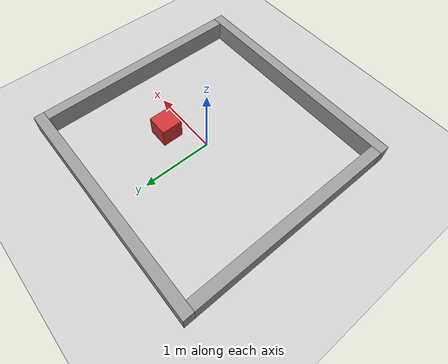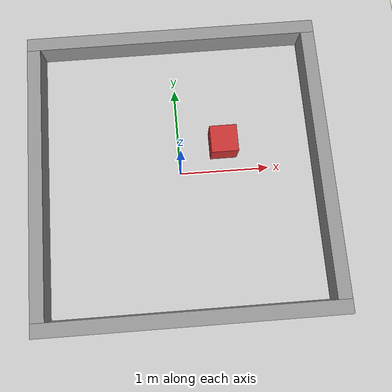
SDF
<?xml version="1.0" ?>
<sdf version="1.8">
  <world name="hexapod_world">
    <physics name="1ms" type="ignored">
      <max_step_size>0.001</max_step_size>
      <real_time_factor>1.0</real_time_factor>
    </physics>

    <!-- Required system plugins for Gazebo Harmonic -->
    <plugin filename="gz-sim-physics-system" name="gz::sim::systems::Physics"/>
    <plugin filename="gz-sim-user-commands-system" name="gz::sim::systems::UserCommands"/>
    <plugin filename="gz-sim-scene-broadcaster-system" name="gz::sim::systems::SceneBroadcaster"/>
    <plugin filename="gz-sim-contact-system" name="gz::sim::systems::Contact"/>
    <plugin filename="gz-sim-sensors-system" name="gz::sim::systems::Sensors">
      <render_engine>ogre2</render_engine>
    </plugin>

    <!-- Sunlight -->
    <light type="directional" name="sun">
      <cast_shadows>true</cast_shadows>
      <pose>0 0 10 0 0 0</pose>
      <diffuse>0.8 0.8 0.8 1</diffuse>
      <specular>0.2 0.2 0.2 1</specular>
      <attenuation>
        <range>1000</range>
        <constant>0.9</constant>
        <linear>0.01</linear>
        <quadratic>0.001</quadratic>
      </attenuation>
      <direction>-0.5 0.1 -0.9</direction>
    </light>

    <!-- Ground plane -->
    <model name="ground_plane">
      <static>true</static>
      <link name="link">
        <collision name="collision">
          <geometry>
            <plane>
              <normal>0 0 1</normal>
              <size>100 100</size>
            </plane>
          </geometry>
          <surface>
            <friction>
              <ode>
                <mu>1.0</mu>
                <mu2>1.0</mu2>
              </ode>
            </friction>
          </surface>
        </collision>
        <visual name="visual">
          <geometry>
            <plane>
              <normal>0 0 1</normal>
              <size>100 100</size>
            </plane>
          </geometry>
          <material>
            <ambient>0.8 0.8 0.8 1</ambient>
            <diffuse>0.8 0.8 0.8 1</diffuse>
            <specular>0.8 0.8 0.8 1</specular>
          </material>
        </visual>
      </link>
    </model>

    <!--
      Simple room: 3m x 3m, walls 0.15m thick, 0.30m tall.
      Origin at room centre (0, 0).  Robot spawns near (-1, 0).
    -->

    <!-- North wall (y = +1.5) -->
    <model name="wall_north">
      <static>true</static>
      <pose>0 1.575 0.15 0 0 0</pose>
      <link name="link">
        <collision name="collision"><geometry><box><size>3.3 0.15 0.30</size></box></geometry></collision>
        <visual name="visual"><geometry><box><size>3.3 0.15 0.30</size></box></geometry>
          <material><ambient>0.6 0.6 0.6 1</ambient><diffuse>0.6 0.6 0.6 1</diffuse></material>
        </visual>
      </link>
    </model>

    <!-- South wall (y = -1.5) -->
    <model name="wall_south">
      <static>true</static>
      <pose>0 -1.575 0.15 0 0 0</pose>
      <link name="link">
        <collision name="collision"><geometry><box><size>3.3 0.15 0.30</size></box></geometry></collision>
        <visual name="visual"><geometry><box><size>3.3 0.15 0.30</size></box></geometry>
          <material><ambient>0.6 0.6 0.6 1</ambient><diffuse>0.6 0.6 0.6 1</diffuse></material>
        </visual>
      </link>
    </model>

    <!-- East wall (x = +1.5) -->
    <model name="wall_east">
      <static>true</static>
      <pose>1.575 0 0.15 0 0 0</pose>
      <link name="link">
        <collision name="collision"><geometry><box><size>0.15 3.0 0.30</size></box></geometry></collision>
        <visual name="visual"><geometry><box><size>0.15 3.0 0.30</size></box></geometry>
          <material><ambient>0.6 0.6 0.6 1</ambient><diffuse>0.6 0.6 0.6 1</diffuse></material>
        </visual>
      </link>
    </model>

    <!-- West wall (x = -1.5) -->
    <model name="wall_west">
      <static>true</static>
      <pose>-1.575 0 0.15 0 0 0</pose>
      <link name="link">
        <collision name="collision"><geometry><box><size>0.15 3.0 0.30</size></box></geometry></collision>
        <visual name="visual"><geometry><box><size>0.15 3.0 0.30</size></box></geometry>
          <material><ambient>0.6 0.6 0.6 1</ambient><diffuse>0.6 0.6 0.6 1</diffuse></material>
        </visual>
      </link>
    </model>

    <!-- Central obstacle (box 0.30 x 0.30) -->
    <model name="obstacle_centre">
      <static>true</static>
      <pose>0.5 0.3 0.15 0 0 0</pose>
      <link name="link">
        <collision name="collision"><geometry><box><size>0.30 0.30 0.30</size></box></geometry></collision>
        <visual name="visual"><geometry><box><size>0.30 0.30 0.30</size></box></geometry>
          <material><ambient>0.8 0.2 0.2 1</ambient><diffuse>0.8 0.2 0.2 1</diffuse></material>
        </visual>
      </link>
    </model>

  </world>
</sdf>
